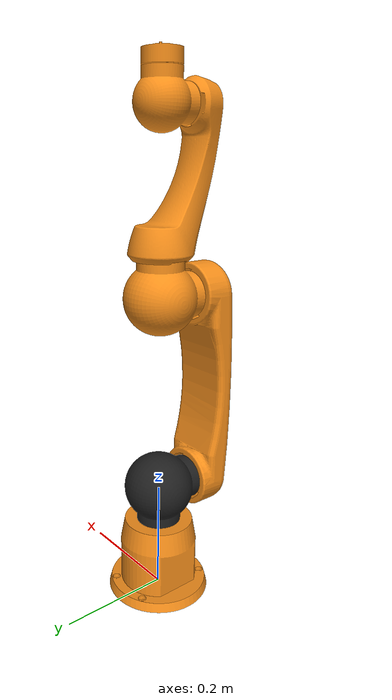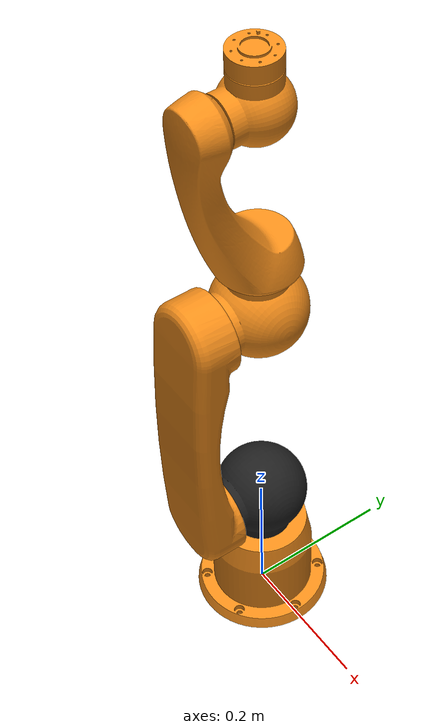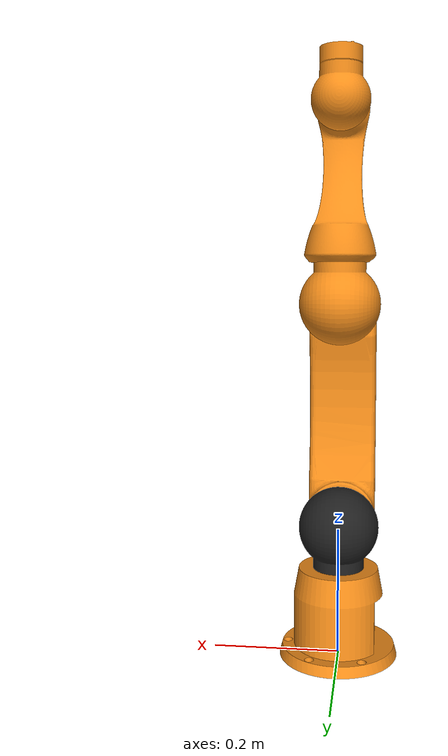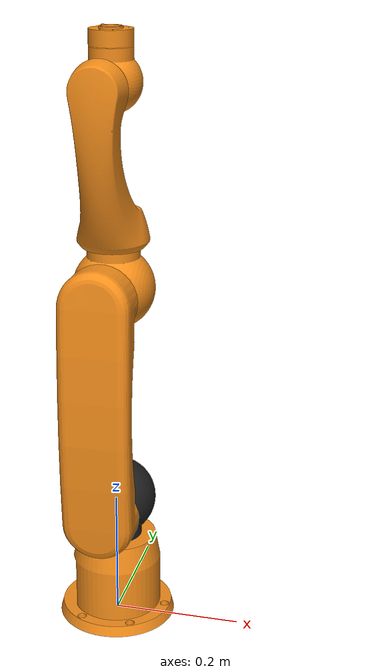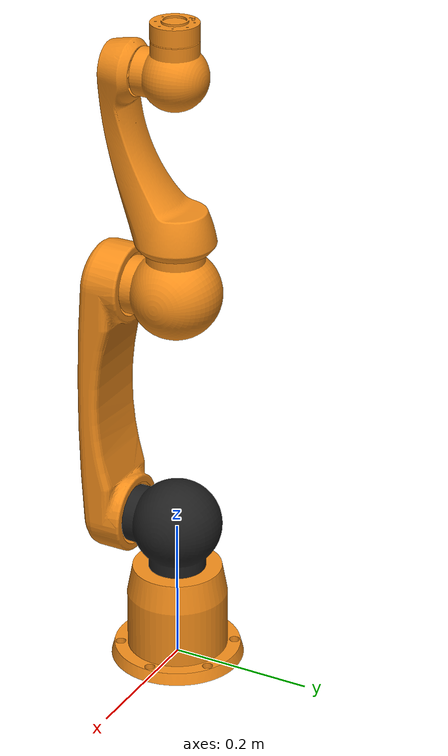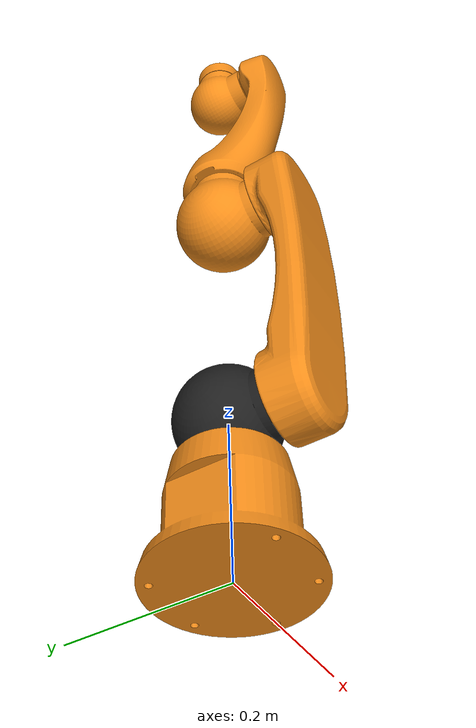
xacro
<?xml version="1.0"?>
<robot xmlns:xacro="http://www.ros.org/wiki/xacro" name="lwa4p" >

    <!-- common stuff -->
    <xacro:include filename="$(find lwa4p_description)/urdf/common.xacro" />
    <xacro:include filename="$(find lwa4p_description)/urdf/gazebo.urdf.xacro" />
    <xacro:include filename="$(find lwa4p_description)/urdf/materials.urdf.xacro" />

    <!-- schunk lwa4p -->
    <xacro:include filename="$(find lwa4p_description)/urdf/lwa4p.urdf.xacro" />

    <!-- Used for fixing robot to Gazebo -->
    <link name="world"/>

    <!-- arm -->
    <xacro:schunk_lwa4p name="arm" parent="world"/>

 </robot>

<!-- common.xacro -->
<robot xmlns:xacro="http://www.ros.org/wiki/xacro">

  <xacro:property name="M_PI" value="3.1415926535897931" />

  <!-- see https://secure.wikimedia.org/wikipedia/en/wiki/List_of_moment_of_inertia_tensors -->
  <xacro:macro name="sphere_inertial" params="radius mass *origin">
    <inertial>
      <mass value="${mass}" />
      <xacro:insert_block name="origin" />
      <inertia ixx="${0.4 * mass * radius * radius}" ixy="0.0" ixz="0.0"
        iyy="${0.4 * mass * radius * radius}" iyz="0.0"
        izz="${0.4 * mass * radius * radius}" />
    </inertial>
  </xacro:macro>

  <xacro:macro name="cylinder_inertial" params="radius length mass *origin">
    <inertial>
      <mass value="${mass}" />
      <xacro:insert_block name="origin" />
      <inertia ixx="${0.0833333 * mass * (3 * radius * radius + length * length)}" ixy="0.0" ixz="0.0"
        iyy="${0.0833333 * mass * (3 * radius * radius + length * length)}" iyz="0.0"
        izz="${0.5 * mass * radius * radius}" />
    </inertial>
  </xacro:macro>

  <xacro:macro name="box_inertial" params="x y z mass *origin">
    <inertial>
      <mass value="${mass}" />
      <xacro:insert_block name="origin" />
      <inertia ixx="${0.0833333 * mass * (y*y + z*z)}" ixy="0.0" ixz="0.0"
        iyy="${0.0833333 * mass * (x*x + z*z)}" iyz="0.0"
        izz="${0.0833333 * mass * (x*x + y*y)}" />
    </inertial>
  </xacro:macro>

  <xacro:macro name="default_inertial">
    <inertial>
      <mass value="0.01" />
      <origin xyz="0 0 0" />
      <inertia ixx="0.001" ixy="0.0" ixz="0.0" iyy="0.001" iyz="0.0" izz="0.001" />
    </inertial>
  </xacro:macro>

  <xacro:macro name="default_transmission" params="jname">
    <transmission name="${jname}_trans">
      <type>transmission_interface/SimpleTransmission</type>
      <joint name="${jname}_joint">
        <hardwareInterface>hardware_interface/PositionJointInterface</hardwareInterface>
        <hardwareInterface>hardware_interface/VelocityJointInterface</hardwareInterface>
        <hardwareInterface>EffortJointInterface</hardwareInterface>
      </joint>
      <actuator name="${jname}_motor">
        <mechanicalReduction>1</mechanicalReduction>
      </actuator>
    </transmission>
  </xacro:macro>

</robot>

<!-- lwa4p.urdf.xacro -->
<robot xmlns:xacro="http://www.ros.org/wiki/xacro">

  <xacro:include filename="$(find lwa4p_description)/urdf/common.xacro" />
  <xacro:include filename="$(find lwa4p_description)/urdf/lwa4p.gazebo.xacro" />
  <xacro:include filename="$(find lwa4p_description)/urdf/lwa4p.transmission.xacro" />

    <xacro:macro name="schunk_lwa4p" params="parent name">

        <!-- Joint 0 -->
        <joint name="${name}_base_joint" type="fixed">
            <parent link="${parent}"/>
            <child link="${name}_0_link"/>
        </joint>

        <!-- Link 0 -->
        <link name="${name}_0_link">
            <collision>
                <origin xyz="0 0 0" rpy="0 0 0"/>
                <geometry>
                    <mesh filename="package://lwa4p_description/meshes/lwa4p_link0.stl" />
                </geometry>
            </collision>

            <visual>
                <origin xyz="0 0 0" rpy="0 0 0"/>
                <geometry>
                    <mesh filename="package://lwa4p_description/meshes/lwa4p_link0.stl" />
                </geometry>
                <material name="orange"/>
            </visual>

            <xacro:default_inertial/>
        </link>

        <!-- Joint 1 -->
        <joint name="${name}_1_joint" type="continuous">
            <parent link="${name}_0_link"/>
            <child link="${name}_1_link"/>
            <origin xyz="0 0 0.205" rpy="0 0 0"/>
            <axis xyz="0 0 1"/>
        </joint>

        <!-- Link 1 -->
        <link name="${name}_1_link">
            <collision>
                <origin xyz="0 0 0" rpy="0 0 0"/>
                <geometry>
                    <mesh filename="package://lwa4p_description/meshes/lwa4p_link1.stl" />
                </geometry>
            </collision>

            <visual>
                <origin xyz="0 0 0" rpy="0 0 0"/>
                <geometry>
                    <mesh filename="package://lwa4p_description/meshes/lwa4p_link1.stl" />
                </geometry>
                <material name="black"/>
            </visual>

            <xacro:default_inertial/>
        </link>

        <!-- Joint 2 -->
        <joint name="${name}_2_joint" type="continuous">
            <parent link="${name}_1_link"/>
            <child link="${name}_2_link"/>
            <origin xyz="0 0 0" rpy="0 0 0"/>
            <axis xyz="0 -1 0"/>
        </joint>

        <!-- Link 2 -->
        <link name="${name}_2_link">
            <collision>
                <origin xyz="0 0 0" rpy="0 0 0"/>
                <geometry>
                    <mesh filename="package://lwa4p_description/meshes/lwa4p_link2.stl" />
                </geometry>
            </collision>

            <visual>
                <origin xyz="0 0 0" rpy="0 0 0"/>
                <geometry>
                    <mesh filename="package://lwa4p_description/meshes/lwa4p_link2.stl" />
                </geometry>
                <material name="orange"/>
            </visual>

            <xacro:default_inertial/>
        </link>

        <!-- Joint 3 -->
        <joint name="${name}_3_joint" type="continuous">
            <parent link="${name}_2_link"/>
            <child link="${name}_3_link"/>
            <origin xyz="0 0 0.350" rpy="0 0 0"/>
            <axis xyz="0 1 0"/>
        </joint>

        <!-- Link 3 -->
        <link name="${name}_3_link">
            <collision>
                <origin xyz="0 0 0" rpy="0 0 0"/>
                <geometry>
                    <mesh filename="package://lwa4p_description/meshes/lwa4p_link3.stl" />
                </geometry>
            </collision>

            <visual>
                <origin xyz="0 0 0" rpy="0 0 0"/>
                <geometry>
                    <mesh filename="package://lwa4p_description/meshes/lwa4p_link3.stl" />
                </geometry>
                <material name="orange"/>
            </visual>

            <xacro:default_inertial/>
        </link>

        <!-- Joint 4 -->
        <joint name="${name}_4_joint" type="continuous">
            <parent link="${name}_3_link"/>
            <child link="${name}_4_link"/>
            <origin xyz="0 0 0.0" rpy="0 0 0"/>
            <axis xyz="0 0 1"/>
        </joint>

        <!-- Link 4 -->
        <link name="${name}_4_link">
            <collision>
                <origin xyz="0 0 0" rpy="0 0 0"/>
                <geometry>
                    <mesh filename="package://lwa4p_description/meshes/lwa4p_link4.stl" />
                </geometry>
            </collision>

            <visual>
                <origin xyz="0 0 0" rpy="0 0 0"/>
                <geometry>
                    <mesh filename="package://lwa4p_description/meshes/lwa4p_link4.stl" />
                </geometry>
                <material name="orange"/>
            </visual>

            <xacro:default_inertial/>
        </link>

        <!-- Joint 5 -->
        <joint name="${name}_5_joint" type="continuous">
            <parent link="${name}_4_link"/>
            <child link="${name}_5_link"/>
            <origin xyz="0 0 0.305" rpy="0 0 0"/>
            <axis xyz="0 1 0"/>
        </joint>

        <!-- Link 5 -->
        <link name="${name}_5_link">
            <collision>
                <origin xyz="0 0 0" rpy="0 0 0"/>
                <geometry>
                    <mesh filename="package://lwa4p_description/meshes/lwa4p_link5.stl" />
                </geometry>
            </collision>

            <visual>
                <origin xyz="0 0 0" rpy="0 0 0"/>
                <geometry>
                    <mesh filename="package://lwa4p_description/meshes/lwa4p_link5.stl" />
                </geometry>
                <material name="orange"/>
            </visual>

            <xacro:default_inertial/>
        </link>

        <!-- Joint 6 -->
        <joint name="${name}_6_joint" type="continuous">
            <parent link="${name}_5_link"/>
            <child link="${name}_6_link"/>
            <origin xyz="0 0 0.07475" rpy="0 3.1416 0"/>
            <axis xyz="0 0 -1"/>
        </joint>

        <!-- Link 6 -->
        <link name="${name}_6_link">
            <collision>
                <origin xyz="0 0 0.0" rpy="0 0 0"/>
                <geometry>
                    <mesh filename="package://lwa4p_description/meshes/lwa4p_link6.stl" />
                </geometry>
            </collision>

            <visual>
                <origin xyz="0 0 0.0" rpy="0 0 0"/>
                <geometry>
                    <mesh filename="package://lwa4p_description/meshes/lwa4p_link6.stl" />
                </geometry>
                <material name="orange"/>
            </visual>

            <xacro:default_inertial/>
        </link>

        <!-- extensions -->
        <xacro:schunk_lwa4p_gazebo name="${name}" />
        <xacro:schunk_lwa4p_transmission name="${name}" />

        <!-- ros_control plugin -->
        <gazebo>
        <plugin name="ros_control" filename="libhwi_switch_gazebo_ros_control.so">
            <robotNamespace>${name}</robotNamespace>
            <filterJointsParam>joint_names</filterJointsParam>
        </plugin>
        </gazebo>

    </xacro:macro>

</robot>
